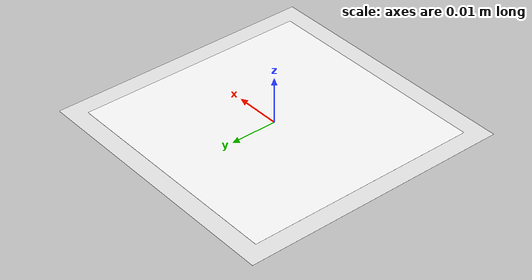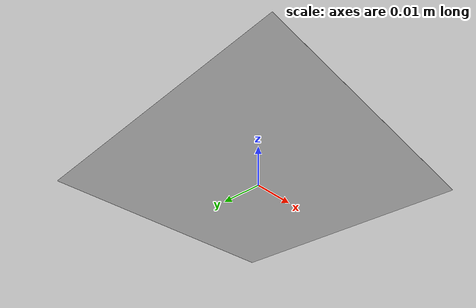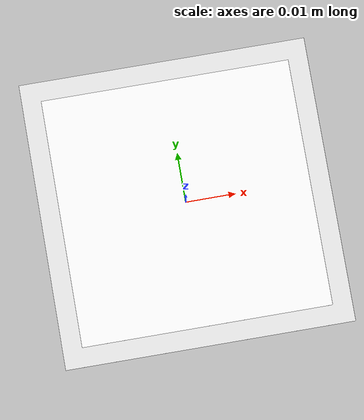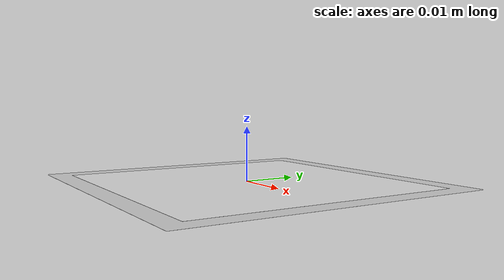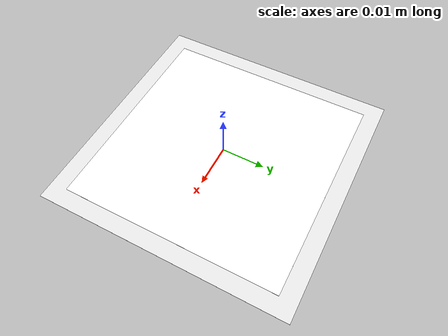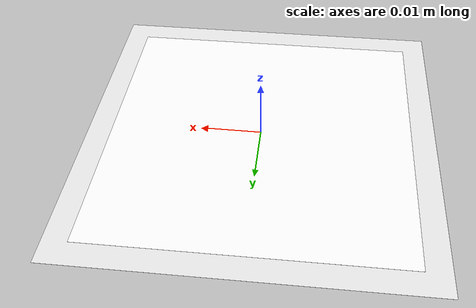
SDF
<?xml version='1.0'?>
<sdf version='1.5'>
  <model name='visual_marker'>
    <link name='marker'>
      <pose frame=''>0 0 0 0 0 0</pose>
      <visual name='visual'>
        <geometry>
          <box>
            <size>0.0500 0.0500 1e-5</size>
          </box>
        </geometry>
        <material>
          <script>
            <uri>model://visual_marker/materials/scripts</uri>
            <uri>model://visual_marker/materials/textures</uri>
            <name>ArucoVisualMarker7/Marker</name>
          </script>
          <ambient>1 1 1 1</ambient>
          <diffuse>1 1 1 1</diffuse>
          <specular>0 0 0 1</specular>
          <emissive>1 1 1 0</emissive>
          <shader type='vertex'>
            <normal_map>__default__</normal_map>
          </shader>
        </material>
        <pose frame=''>0 0 0 0 -0 0</pose>
        <cast_shadows>1</cast_shadows>
        <transparency>0</transparency>
      </visual>
      <collision name='collision'>
        <laser_retro>0</laser_retro>
        <max_contacts>10</max_contacts>
        <pose frame=''>0 0 0 0 -0 0</pose>
        <geometry>
          <box>
            <size>0.05778 0.05778 1e-05</size>
          </box>
        </geometry>
      </collision>
    </link>

    <link name='marker_pad'>
      <pose frame='marker'>0 0 -1e-5 0 -0 0</pose>
      <visual name='visual'>
        <geometry>
          <box>
            <size>0.05778 0.05778 1e-5</size>
          </box>
        </geometry>
        <material>
          <lighting>1</lighting>
          <script>
            <uri>file://media/materials/scripts/gazebo.material</uri>
            <name>Gazebo/White</name>
          </script>
          <ambient>0.3 0.3 0.3 1</ambient>
          <diffuse>0.7 0.7 0.7 1</diffuse>
          <specular>0.01 0.01 0.01 1</specular>
          <emissive>1 1 1 0</emissive>
          <shader type='vertex'>
            <normal_map>__default__</normal_map>
          </shader>
        </material>
        <cast_shadows>1</cast_shadows>
        <transparency>0</transparency>
      </visual>
      <collision name='collision'>
        <laser_retro>0</laser_retro>
        <max_contacts>10</max_contacts>
        <pose frame=''>0 0 0 0 -0 0</pose>
        <geometry>
          <box>
            <size>0.05778 0.05778 1e-5</size>
          </box>
        </geometry>
      </collision>
    </link>

    <joint name='marker_JOINT_marker_pad' type='fixed'>
      <parent>marker</parent>
      <child>marker_pad</child>
      <pose frame=''>0 0 0 0 -0 0</pose>
      <physics>
        <ode>
          <limit>
            <cfm>0</cfm>
            <erp>0.2</erp>
          </limit>
          <suspension>
            <cfm>0</cfm>
            <erp>0.2</erp>
          </suspension>
        </ode>
      </physics>

    </joint>

    <static>1</static>
    <allow_auto_disable>1</allow_auto_disable>

  </model>
</sdf>
